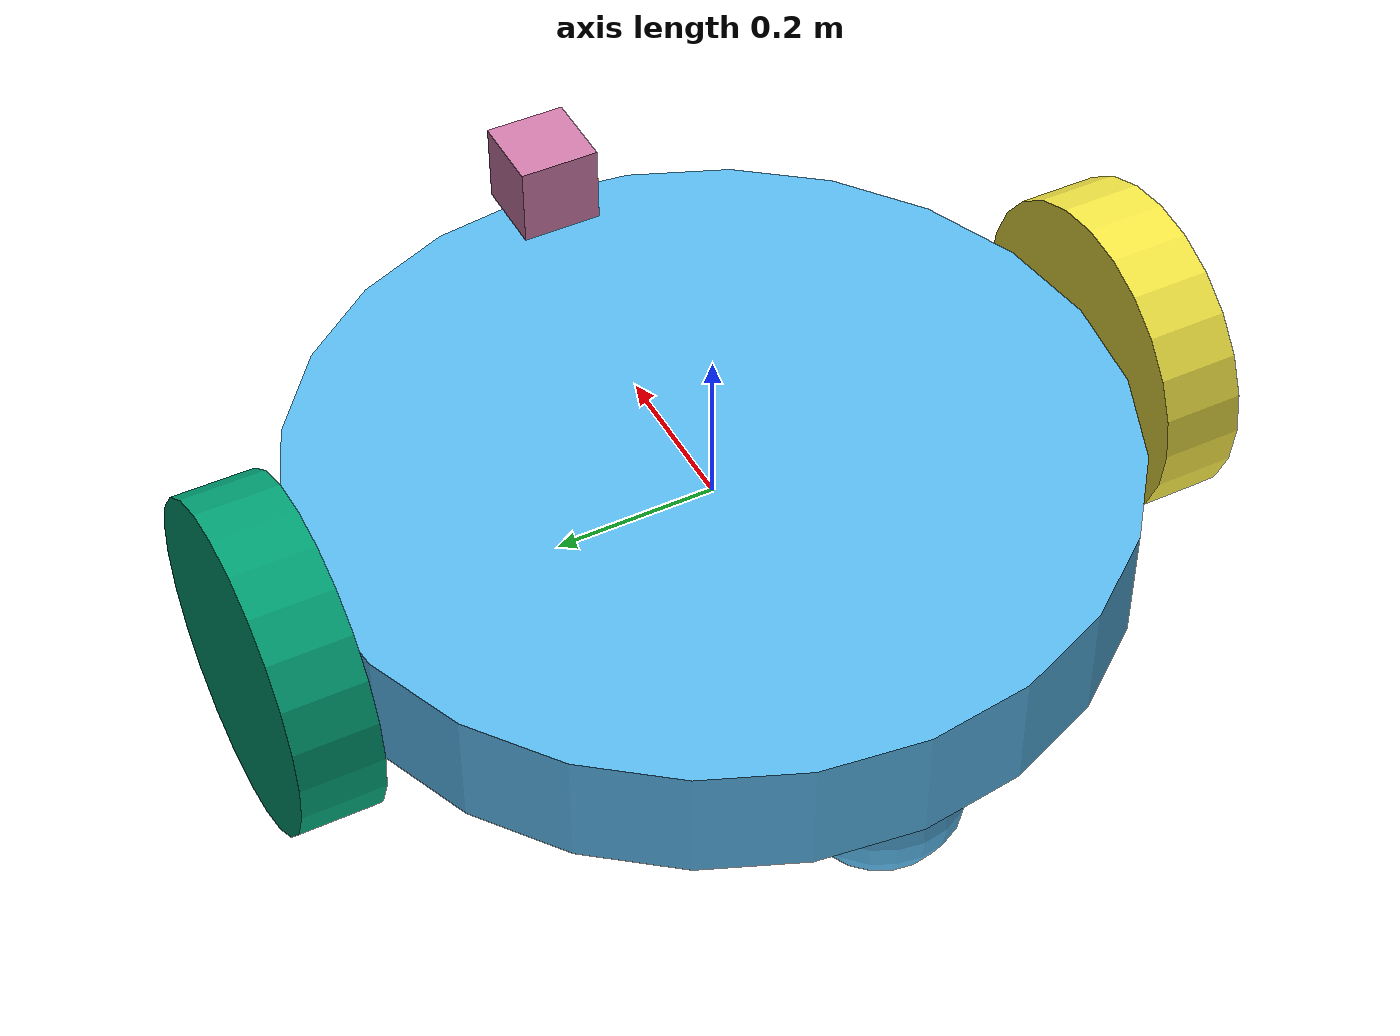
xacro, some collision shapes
<?xml version='1.0'?>

<robot name="my_robot" xmlns:xacro="http://www.ros.org/wiki/xacro">
  <xacro:include filename="$(find my_robot)/urdf/my_robot.gazebo" />

  <link name="robot_footprint"></link>

  <joint name="robot_footprint_joint" type="fixed">
    <origin xyz="0 0 0" rpy="0 0 0"/>
    <parent link="robot_footprint"/>
    <child link="chassis"/>
  </joint>

  <link name="chassis">
    <pose> 0 0 0.1 0 0 0 </pose>

    <inertial>
      <mass value="10.0"/>
      <origin xyz="0 0 0" rpy="0 0 0"/>
      <inertia
        ixx="0.1" ixy="0" ixz="0"
        iyy="0.1" iyz="0"
        izz="0.1"
      />
    </inertial>

    <collision name="collision">
      <origin xyz="0 0 0" rpy="0 0 0"/>
      <geometry>
        <cylinder radius="0.5" length="0.15"/>
      </geometry>
    </collision>

    <visual name="chassis_visual">
      <origin xyz="0 0 0" rpy="0 0 0"/>
      <geometry>
        <cylinder radius="0.5" length="0.15"/>
      </geometry>
    </visual>

    <collision name='back_caster_collision'>
      <origin xyz="-0.4 0 -0.1" rpy=" 0 0 0"/>
      <geometry>
        <sphere radius="0.099"/>
      </geometry>
    </collision>

    <visual name='back_caster_visual'>
      <origin xyz="-0.4 0 -0.1" rpy=" 0 0 0"/>
      <geometry>
        <sphere radius="0.1"/>
      </geometry>
    </visual>

    <collision name='front_caster_collision'>
      <origin xyz="0.4 0 -0.1" rpy=" 0 0 0"/>
      <geometry>
        <sphere radius="0.099"/>
      </geometry>
    </collision>

    <visual name='front_caster_visual'>
      <origin xyz="0.4 0 -0.1" rpy=" 0 0 0"/>
      <geometry>
        <sphere radius="0.1"/>
      </geometry>
    </visual>

  </link>

  <link name="left_wheel">

    <inertial>
      <mass value="3.0"/>
      <origin xyz="0 0 0" rpy="0 1.5707 1.5707"/>
      <inertia
        ixx="0.1" ixy="0" ixz="0"
        iyy="0.1" iyz="0"
        izz="0.1"
      />
    </inertial>

    <collision name="left_wheel_collision">
      <origin xyz="0 0 0" rpy="0 1.5707 1.5707"/>
      <geometry>
        <cylinder radius="0.2" length="0.1"/>
      </geometry>
    </collision>

    <visual name="left_wheel_visual">
      <origin xyz="0 0 0" rpy="0 1.5707 1.5707"/>
      <geometry>
        <cylinder radius="0.2" length="0.1"/>
      </geometry>
    </visual>
  </link>

  <joint type="continuous" name="left_wheel_hinge">
    <origin xyz="0 0.55 0" rpy="0 0 0"/>
    <child link="left_wheel"/>
    <parent link="chassis"/>
    <axis xyz="0 1 0" rpy="0 0 0"/>
    <limit effort="10000" velocity="1000"/>
    <dynamics damping="1.0" friction="1.0"/>
  </joint>

  <link name="right_wheel">

    <inertial>
      <mass value="3.0"/>
      <origin xyz="0 0 0" rpy="0 1.5707 1.5707"/>
      <inertia
        ixx="0.1" ixy="0" ixz="0"
        iyy="0.1" iyz="0"
        izz="0.1"
      />
    </inertial>

    <collision name="right_wheel_collision">
      <origin xyz="0 0 0" rpy="0 1.5707 1.5707"/>
      <geometry>
        <cylinder radius="0.2" length="0.1"/>
      </geometry>
    </collision>

    <visual name="right_wheel_visual">
      <origin xyz="0 0 0" rpy="0 1.5707 1.5707"/>
      <geometry>
        <cylinder radius="0.2" length="0.1"/>
      </geometry>
    </visual>
  </link>

  <joint type="continuous" name="right_wheel_hinge">
    <origin xyz="0 -0.55 0" rpy="0 0 0"/>
    <child link="right_wheel"/>
    <parent link="chassis"/>
    <axis xyz="0 1 0" rpy="0 0 0"/>
    <limit effort="10000" velocity="1000"/>
    <dynamics damping="1.0" friction="1.0"/>
  </joint>

  <link name="camera">
    <inertial>
      <mass value="0.1"/>
      <origin xyz="0 0 0" rpy="0 0 0"/>
      <inertia
        ixx="1e-6" ixy="0" ixz="0"
        iyy="1e-6" iyz="0"
        izz="1e-6"
       />
     </inertial>

     <collision name="camera_collision">
       <origin xyz="0 0 0" rpy="0 0 0"/>
       <geometry>
         <box size="0.05 0.05 0.05"/>
       </geometry>
     </collision>

     <visual name="camera_visual">
       <origin xyz="0 0 0" rpy="0 0 0"/>
       <geometry>
         <box size="0.05 0.05 0.05"/>
       </geometry>
     </visual>
   </link>

   <joint type="fixed" name="camera_joint">
     <origin xyz="0.5 0 0" rpy="0 0 0"/>
     <child link="camera"/>
     <parent link="chassis"/>
     <axis xyz="0 1 0" rpy="0 0 0"/>
   </joint>

   <link name="camera_link_optical">
   </link>

   <joint type="fixed" name="camera_optical_joint">
     <origin xyz="0 0 0" rpy="-1.5707 0 -1.5707"/>
     <child link="camera_link_optical"/>
     <parent link="camera"/>
   </joint>

   <link name="hokuyo">
     <inertial>
       <mass value="1e-5"/>
       <origin xyz="0 0 0" rpy="0 0 0"/>
       <inertia
        ixx="1e-6" ixy="0" ixz="0"
        iyy="1e-6" iyz="0"
        izz="1e-6"
       />
     </inertial>

     <collision name="hokuyo_collision">
       <origin xyz="0 0 0" rpy="0 0 0"/>
       <geometry>
         <box size="0.1 0.1 0.1"/>
       </geometry>
     </collision>

     <visual name="hokuyo_visual">
       <origin xyz="0 0 0" rpy="0 0 0"/>
       <geometry>
         <mesh filename="package://my_robot/meshes/hokuyo.dae"/>
       </geometry>
     </visual>
   </link>

   <joint type="fixed" name="hokuyo_joint">
     <origin xyz="0.45 0 0.15" rpy="0 0 0"/>
     <child link="hokuyo"/>
     <parent link="chassis"/>
     <axis xyz="0 1 0" rpy="0 0 0"/>
   </joint>

</robot>
